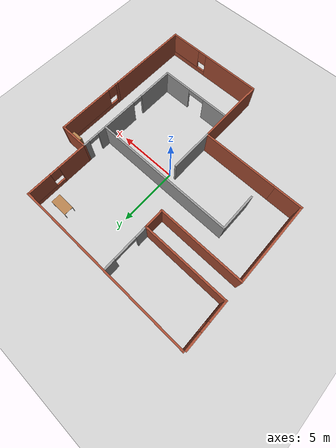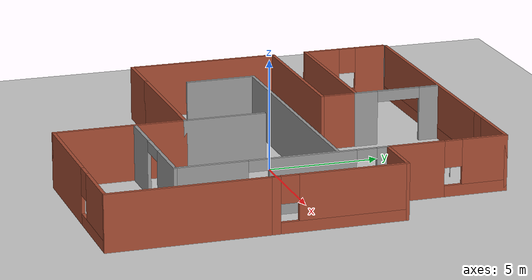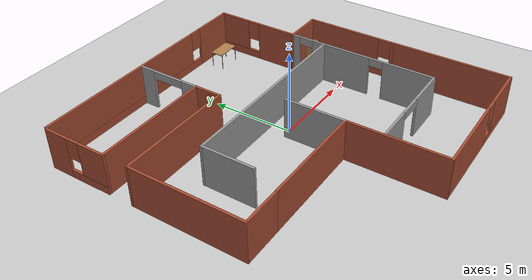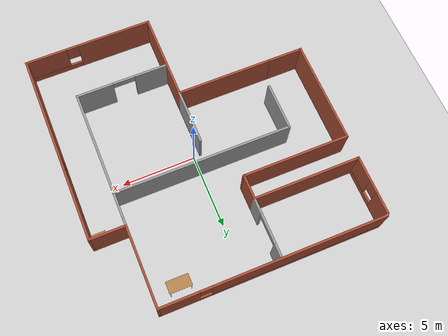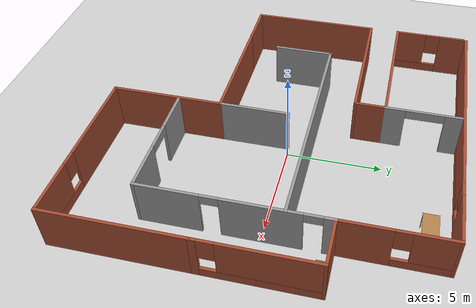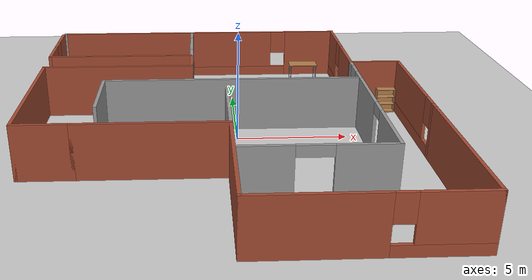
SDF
<sdf version="1.6">
 <world name="default">
  <model name="ground_plane">
   <static>1</static>
   <link name="link">
    <collision name="collision">
     <geometry><plane><normal>0 0 1</normal><size>100 100</size></plane></geometry>
     <surface><friction><ode><mu>100</mu><mu2>50</mu2></ode></friction></surface>
    </collision>
    <visual name="visual">
     <cast_shadows>0</cast_shadows>
     <geometry><plane><normal>0 0 1</normal><size>100 100</size></plane></geometry>
     <material>
      <script><uri>file://media/materials/scripts/gazebo.material</uri><name>Gazebo/Grey</name></script>
     </material>
    </visual>
   </link>
  </model>
  <model name="building">
   <pose>-0.534457 -0.392222 0 0 -0 0</pose>
   <link name="Wall_0">
    <pose>-8.65 7.075 0 0 -0 -1.5708</pose>
    <visual name="Wall_0_Visual_0">
     <pose>-1.27139 0 1.25 0 -0 0</pose>
     <geometry><box><size>1.45721 0.15 2.5</size></box></geometry>
     <material>
      <script><uri>file://media/materials/scripts/gazebo.material</uri><name>Gazebo/Bricks</name></script>
      <ambient>1 1 1 1</ambient>
     </material>
     <meta><layer>0</layer></meta>
    </visual>
    <collision name="Wall_0_Collision_0">
     <geometry><box><size>1.45721 0.15 2.5</size></box></geometry>
     <pose>-1.27139 0 1.25 0 -0 0</pose>
    </collision>
    <visual name="Wall_0_Visual_1">
     <pose>0.728607 0 0.25 0 -0 0</pose>
     <geometry><box><size>2.54279 0.15 0.5</size></box></geometry>
     <material>
      <script><uri>file://media/materials/scripts/gazebo.material</uri><name>Gazebo/Bricks</name></script>
      <ambient>1 1 1 1</ambient>
     </material>
     <meta><layer>0</layer></meta>
    </visual>
    <collision name="Wall_0_Collision_1">
     <geometry><box><size>2.54279 0.15 0.5</size></box></geometry>
     <pose>0.728607 0 0.25 0 -0 0</pose>
    </collision>
    <visual name="Wall_0_Visual_2">
     <pose>1.12861 0 1.5 0 -0 0</pose>
     <geometry><box><size>1.74279 0.15 2</size></box></geometry>
     <material>
      <script><uri>file://media/materials/scripts/gazebo.material</uri><name>Gazebo/Bricks</name></script>
      <ambient>1 1 1 1</ambient>
     </material>
     <meta><layer>0</layer></meta>
    </visual>
    <collision name="Wall_0_Collision_2">
     <geometry><box><size>1.74279 0.15 2</size></box></geometry>
     <pose>1.12861 0 1.5 0 -0 0</pose>
    </collision>
    <visual name="Wall_0_Visual_3">
     <pose>-0.142786 0 1.9 0 -0 0</pose>
     <geometry><box><size>0.8 0.15 1.2</size></box></geometry>
     <material>
      <script><uri>file://media/materials/scripts/gazebo.material</uri><name>Gazebo/Bricks</name></script>
      <ambient>1 1 1 1</ambient>
     </material>
     <meta><layer>0</layer></meta>
    </visual>
    <collision name="Wall_0_Collision_3">
     <geometry><box><size>0.8 0.15 1.2</size></box></geometry>
     <pose>-0.142786 0 1.9 0 -0 0</pose>
    </collision>
   </link>
   <link name="Wall_1">
    <collision name="Wall_1_Collision">
     <geometry><box><size>7.25 0.15 2.5</size></box></geometry>
     <pose>0 0 1.25 0 -0 0</pose>
    </collision>
    <visual name="Wall_1_Visual">
     <pose>0 0 1.25 0 -0 0</pose>
     <geometry><box><size>7.25 0.15 2.5</size></box></geometry>
     <material>
      <script><uri>file://media/materials/scripts/gazebo.material</uri><name>Gazebo/Bricks</name></script>
      <ambient>1 1 1 1</ambient>
     </material>
     <meta><layer>0</layer></meta>
    </visual>
    <pose>-5.1 5.15 0 0 -0 0</pose>
   </link>
   <link name="Wall_10">
    <pose>8.65 0.875 0 0 -0 1.5708</pose>
    <visual name="Wall_10_Visual_0">
     <pose>-2.81124 0 1.25 0 -0 0</pose>
     <geometry><box><size>0.377523 0.15 2.5</size></box></geometry>
     <material>
      <script><uri>file://media/materials/scripts/gazebo.material</uri><name>Gazebo/Bricks</name></script>
      <ambient>1 1 1 1</ambient>
     </material>
     <meta><layer>0</layer></meta>
    </visual>
    <collision name="Wall_10_Collision_0">
     <geometry><box><size>0.377523 0.15 2.5</size></box></geometry>
     <pose>-2.81124 0 1.25 0 -0 0</pose>
    </collision>
    <visual name="Wall_10_Visual_1">
     <pose>0.188761 0 0.25 0 -0 0</pose>
     <geometry><box><size>5.62248 0.15 0.5</size></box></geometry>
     <material>
      <script><uri>file://media/materials/scripts/gazebo.material</uri><name>Gazebo/Bricks</name></script>
      <ambient>1 1 1 1</ambient>
     </material>
     <meta><layer>0</layer></meta>
    </visual>
    <collision name="Wall_10_Collision_1">
     <geometry><box><size>5.62248 0.15 0.5</size></box></geometry>
     <pose>0.188761 0 0.25 0 -0 0</pose>
    </collision>
    <visual name="Wall_10_Visual_2">
     <pose>0.588761 0 1.5 0 -0 0</pose>
     <geometry><box><size>4.82248 0.15 2</size></box></geometry>
     <material>
      <script><uri>file://media/materials/scripts/gazebo.material</uri><name>Gazebo/Bricks</name></script>
      <ambient>1 1 1 1</ambient>
     </material>
     <meta><layer>0</layer></meta>
    </visual>
    <collision name="Wall_10_Collision_2">
     <geometry><box><size>4.82248 0.15 2</size></box></geometry>
     <pose>0.588761 0 1.5 0 -0 0</pose>
    </collision>
    <visual name="Wall_10_Visual_3">
     <pose>-2.22248 0 1.9 0 -0 0</pose>
     <geometry><box><size>0.8 0.15 1.2</size></box></geometry>
     <material>
      <script><uri>file://media/materials/scripts/gazebo.material</uri><name>Gazebo/Bricks</name></script>
      <ambient>1 1 1 1</ambient>
     </material>
     <meta><layer>0</layer></meta>
    </visual>
    <collision name="Wall_10_Collision_3">
     <geometry><box><size>0.8 0.15 1.2</size></box></geometry>
     <pose>-2.22248 0 1.9 0 -0 0</pose>
    </collision>
   </link>
   <link name="Wall_11">
    <collision name="Wall_11_Collision">
     <geometry><box><size>2.5 0.15 2.5</size></box></geometry>
     <pose>0 0 1.25 0 -0 0</pose>
    </collision>
    <visual name="Wall_11_Visual">
     <pose>0 0 1.25 0 -0 0</pose>
     <geometry><box><size>2.5 0.15 2.5</size></box></geometry>
     <material>
      <script><uri>file://media/materials/scripts/gazebo.material</uri><name>Gazebo/Bricks</name></script>
      <ambient>1 1 1 1</ambient>
     </material>
     <meta><layer>0</layer></meta>
    </visual>
    <pose>7.475 3.8 0 0 -0 3.14159</pose>
   </link>
   <link name="Wall_12">
    <pose>6.3 6.475 0 0 -0 1.5708</pose>
    <visual name="Wall_12_Visual_0">
     <pose>-1.44301 0 1.25 0 -0 0</pose>
     <geometry><box><size>2.61398 0.15 2.5</size></box></geometry>
     <material>
      <script><uri>file://media/materials/scripts/gazebo.material</uri><name>Gazebo/Bricks</name></script>
      <ambient>1 1 1 1</ambient>
     </material>
     <meta><layer>0</layer></meta>
    </visual>
    <collision name="Wall_12_Collision_0">
     <geometry><box><size>2.61398 0.15 2.5</size></box></geometry>
     <pose>-1.44301 0 1.25 0 -0 0</pose>
    </collision>
    <visual name="Wall_12_Visual_1">
     <pose>1.30699 0 0.25 0 -0 0</pose>
     <geometry><box><size>2.88602 0.15 0.5</size></box></geometry>
     <material>
      <script><uri>file://media/materials/scripts/gazebo.material</uri><name>Gazebo/Bricks</name></script>
      <ambient>1 1 1 1</ambient>
     </material>
     <meta><layer>0</layer></meta>
    </visual>
    <collision name="Wall_12_Collision_1">
     <geometry><box><size>2.88602 0.15 0.5</size></box></geometry>
     <pose>1.30699 0 0.25 0 -0 0</pose>
    </collision>
    <visual name="Wall_12_Visual_2">
     <pose>1.70699 0 1.5 0 -0 0</pose>
     <geometry><box><size>2.08602 0.15 2</size></box></geometry>
     <material>
      <script><uri>file://media/materials/scripts/gazebo.material</uri><name>Gazebo/Bricks</name></script>
      <ambient>1 1 1 1</ambient>
     </material>
     <meta><layer>0</layer></meta>
    </visual>
    <collision name="Wall_12_Collision_2">
     <geometry><box><size>2.08602 0.15 2</size></box></geometry>
     <pose>1.70699 0 1.5 0 -0 0</pose>
    </collision>
    <visual name="Wall_12_Visual_3">
     <pose>0.263984 0 1.9 0 -0 0</pose>
     <geometry><box><size>0.8 0.15 1.2</size></box></geometry>
     <material>
      <script><uri>file://media/materials/scripts/gazebo.material</uri><name>Gazebo/Bricks</name></script>
      <ambient>1 1 1 1</ambient>
     </material>
     <meta><layer>0</layer></meta>
    </visual>
    <collision name="Wall_12_Collision_3">
     <geometry><box><size>0.8 0.15 1.2</size></box></geometry>
     <pose>0.263984 0 1.9 0 -0 0</pose>
    </collision>
   </link>
   <link name="Wall_13">
    <pose>-1.125 9.15 0 0 -0 3.14159</pose>
    <visual name="Wall_13_Visual_0">
     <pose>-6.14594 0 1.25 0 -0 0</pose>
     <geometry><box><size>2.70811 0.15 2.5</size></box></geometry>
     <material>
      <script><uri>file://media/materials/scripts/gazebo.material</uri><name>Gazebo/Bricks</name></script>
      <ambient>1 1 1 1</ambient>
     </material>
     <meta><layer>0</layer></meta>
    </visual>
    <collision name="Wall_13_Collision_0">
     <geometry><box><size>2.70811 0.15 2.5</size></box></geometry>
     <pose>-6.14594 0 1.25 0 -0 0</pose>
    </collision>
    <visual name="Wall_13_Visual_1">
     <pose>1.35406 0 0.25 0 -0 0</pose>
     <geometry><box><size>12.2919 0.15 0.5</size></box></geometry>
     <material>
      <script><uri>file://media/materials/scripts/gazebo.material</uri><name>Gazebo/Bricks</name></script>
      <ambient>1 1 1 1</ambient>
     </material>
     <meta><layer>0</layer></meta>
    </visual>
    <collision name="Wall_13_Collision_1">
     <geometry><box><size>12.2919 0.15 0.5</size></box></geometry>
     <pose>1.35406 0 0.25 0 -0 0</pose>
    </collision>
    <visual name="Wall_13_Visual_2">
     <pose>1.75406 0 1.5 0 -0 0</pose>
     <geometry><box><size>11.4919 0.15 2</size></box></geometry>
     <material>
      <script><uri>file://media/materials/scripts/gazebo.material</uri><name>Gazebo/Bricks</name></script>
      <ambient>1 1 1 1</ambient>
     </material>
     <meta><layer>0</layer></meta>
    </visual>
    <collision name="Wall_13_Collision_2">
     <geometry><box><size>11.4919 0.15 2</size></box></geometry>
     <pose>1.75406 0 1.5 0 -0 0</pose>
    </collision>
    <visual name="Wall_13_Visual_3">
     <pose>-4.39189 0 1.9 0 -0 0</pose>
     <geometry><box><size>0.8 0.15 1.2</size></box></geometry>
     <material>
      <script><uri>file://media/materials/scripts/gazebo.material</uri><name>Gazebo/Bricks</name></script>
      <ambient>1 1 1 1</ambient>
     </material>
     <meta><layer>0</layer></meta>
    </visual>
    <collision name="Wall_13_Collision_3">
     <geometry><box><size>0.8 0.15 1.2</size></box></geometry>
     <pose>-4.39189 0 1.9 0 -0 0</pose>
    </collision>
   </link>
   <link name="Wall_14">
    <collision name="Wall_14_Collision">
     <geometry><box><size>0.15 0.15 2.5</size></box></geometry>
     <pose>0 0 1.25 0 -0 0</pose>
    </collision>
    <visual name="Wall_14_Visual">
     <pose>0 0 1.25 0 -0 0</pose>
     <geometry><box><size>0.15 0.15 2.5</size></box></geometry>
     <material>
      <script><uri>file://media/materials/scripts/gazebo.material</uri><name>Gazebo/Grey</name></script>
      <ambient>1 1 1 1</ambient>
     </material>
     <meta><layer>0</layer></meta>
    </visual>
    <pose>-8.55 9.15 0 0 -0 0</pose>
   </link>
   <link name="Wall_18">
    <pose>6.3 -0.875 0 0 -0 -1.5708</pose>
    <visual name="Wall_18_Visual_0">
     <pose>-4.45188 0 1.25 0 -0 0</pose>
     <geometry><box><size>0.596246 0.15 2.5</size></box></geometry>
     <material>
      <script><uri>file://media/materials/scripts/gazebo.material</uri><name>Gazebo/Grey</name></script>
      <ambient>1 1 1 1</ambient>
     </material>
     <meta><layer>0</layer></meta>
    </visual>
    <collision name="Wall_18_Collision_0">
     <geometry><box><size>0.596246 0.15 2.5</size></box></geometry>
     <pose>-4.45188 0 1.25 0 -0 0</pose>
    </collision>
    <visual name="Wall_18_Visual_1">
     <pose>-1.32304 0 1.25 0 -0 0</pose>
     <geometry><box><size>3.86144 0.15 2.5</size></box></geometry>
     <material>
      <script><uri>file://media/materials/scripts/gazebo.material</uri><name>Gazebo/Grey</name></script>
      <ambient>1 1 1 1</ambient>
     </material>
     <meta><layer>0</layer></meta>
    </visual>
    <collision name="Wall_18_Collision_1">
     <geometry><box><size>3.86144 0.15 2.5</size></box></geometry>
     <pose>-1.32304 0 1.25 0 -0 0</pose>
    </collision>
    <visual name="Wall_18_Visual_2">
     <pose>3.12884 0 1.25 0 -0 0</pose>
     <geometry><box><size>3.24232 0.15 2.5</size></box></geometry>
     <material>
      <script><uri>file://media/materials/scripts/gazebo.material</uri><name>Gazebo/Grey</name></script>
      <ambient>1 1 1 1</ambient>
     </material>
     <meta><layer>0</layer></meta>
    </visual>
    <collision name="Wall_18_Collision_2">
     <geometry><box><size>3.24232 0.15 2.5</size></box></geometry>
     <pose>3.12884 0 1.25 0 -0 0</pose>
    </collision>
    <visual name="Wall_18_Visual_3">
     <pose>-3.70375 0 2.25 0 -0 0</pose>
     <geometry><box><size>0.9 0.15 0.5</size></box></geometry>
     <material>
      <script><uri>file://media/materials/scripts/gazebo.material</uri><name>Gazebo/Grey</name></script>
      <ambient>1 1 1 1</ambient>
     </material>
     <meta><layer>0</layer></meta>
    </visual>
    <collision name="Wall_18_Collision_3">
     <geometry><box><size>0.9 0.15 0.5</size></box></geometry>
     <pose>-3.70375 0 2.25 0 -0 0</pose>
    </collision>
    <visual name="Wall_18_Visual_4">
     <pose>1.05768 0 2.25 0 -0 0</pose>
     <geometry><box><size>0.9 0.15 0.5</size></box></geometry>
     <material>
      <script><uri>file://media/materials/scripts/gazebo.material</uri><name>Gazebo/Grey</name></script>
      <ambient>1 1 1 1</ambient>
     </material>
     <meta><layer>0</layer></meta>
    </visual>
    <collision name="Wall_18_Collision_4">
     <geometry><box><size>0.9 0.15 0.5</size></box></geometry>
     <pose>1.05768 0 2.25 0 -0 0</pose>
    </collision>
   </link>
   <link name="Wall_19">
    <pose>3.25 -5.55 0 0 -0 3.14159</pose>
    <visual name="Wall_19_Visual_0">
     <pose>-1.85284 0 1.25 0 -0 0</pose>
     <geometry><box><size>2.54431 0.15 2.5</size></box></geometry>
     <material>
      <script><uri>file://media/materials/scripts/gazebo.material</uri><name>Gazebo/Grey</name></script>
      <ambient>1 1 1 1</ambient>
     </material>
     <meta><layer>0</layer></meta>
    </visual>
    <collision name="Wall_19_Collision_0">
     <geometry><box><size>2.54431 0.15 2.5</size></box></geometry>
     <pose>-1.85284 0 1.25 0 -0 0</pose>
    </collision>
    <visual name="Wall_19_Visual_1">
     <pose>2.02216 0 1.25 0 -0 0</pose>
     <geometry><box><size>2.20569 0.15 2.5</size></box></geometry>
     <material>
      <script><uri>file://media/materials/scripts/gazebo.material</uri><name>Gazebo/Grey</name></script>
      <ambient>1 1 1 1</ambient>
     </material>
     <meta><layer>0</layer></meta>
    </visual>
    <collision name="Wall_19_Collision_1">
     <geometry><box><size>2.20569 0.15 2.5</size></box></geometry>
     <pose>2.02216 0 1.25 0 -0 0</pose>
    </collision>
    <visual name="Wall_19_Visual_2">
     <pose>0.169312 0 2.25 0 -0 0</pose>
     <geometry><box><size>1.5 0.15 0.5</size></box></geometry>
     <material>
      <script><uri>file://media/materials/scripts/gazebo.material</uri><name>Gazebo/Grey</name></script>
      <ambient>1 1 1 1</ambient>
     </material>
     <meta><layer>0</layer></meta>
    </visual>
    <collision name="Wall_19_Collision_2">
     <geometry><box><size>1.5 0.15 0.5</size></box></geometry>
     <pose>0.169312 0 2.25 0 -0 0</pose>
    </collision>
   </link>
   <link name="Wall_2">
    <collision name="Wall_2_Collision">
     <geometry><box><size>1.75 0.15 2.5</size></box></geometry>
     <pose>0 0 1.25 0 -0 0</pose>
    </collision>
    <visual name="Wall_2_Visual">
     <pose>0 0 1.25 0 -0 0</pose>
     <geometry><box><size>1.75 0.15 2.5</size></box></geometry>
     <material>
      <script><uri>file://media/materials/scripts/gazebo.material</uri><name>Gazebo/Bricks</name></script>
      <ambient>1 1 1 1</ambient>
     </material>
     <meta><layer>0</layer></meta>
    </visual>
    <pose>-1.55 4.35 0 0 -0 -1.5708</pose>
   </link>
   <link name="Wall_23">
    <pose>-1.55 7.075 0 0 -0 1.5708</pose>
    <visual name="Wall_23_Visual_0">
     <pose>-1.45521 0 1.25 0 -0 0</pose>
     <geometry><box><size>1.08959 0.15 2.5</size></box></geometry>
     <material>
      <script><uri>file://media/materials/scripts/gazebo.material</uri><name>Gazebo/Grey</name></script>
      <ambient>1 1 1 1</ambient>
     </material>
     <meta><layer>0</layer></meta>
    </visual>
    <collision name="Wall_23_Collision_0">
     <geometry><box><size>1.08959 0.15 2.5</size></box></geometry>
     <pose>-1.45521 0 1.25 0 -0 0</pose>
    </collision>
    <visual name="Wall_23_Visual_1">
     <pose>1.54479 0 1.25 0 -0 0</pose>
     <geometry><box><size>0.910414 0.15 2.5</size></box></geometry>
     <material>
      <script><uri>file://media/materials/scripts/gazebo.material</uri><name>Gazebo/Grey</name></script>
      <ambient>1 1 1 1</ambient>
     </material>
     <meta><layer>0</layer></meta>
    </visual>
    <collision name="Wall_23_Collision_1">
     <geometry><box><size>0.910414 0.15 2.5</size></box></geometry>
     <pose>1.54479 0 1.25 0 -0 0</pose>
    </collision>
    <visual name="Wall_23_Visual_2">
     <pose>0.089586 0 2.25 0 -0 0</pose>
     <geometry><box><size>2 0.15 0.5</size></box></geometry>
     <material>
      <script><uri>file://media/materials/scripts/gazebo.material</uri><name>Gazebo/Grey</name></script>
      <ambient>1 1 1 1</ambient>
     </material>
     <meta><layer>0</layer></meta>
    </visual>
    <collision name="Wall_23_Collision_2">
     <geometry><box><size>2 0.15 0.5</size></box></geometry>
     <pose>0.089586 0 2.25 0 -0 0</pose>
    </collision>
   </link>
   <link name="Wall_25">
    <collision name="Wall_25_Collision">
     <geometry><box><size>12 0.15 2.5</size></box></geometry>
     <pose>0 0 1.25 0 -0 0</pose>
    </collision>
    <visual name="Wall_25_Visual">
     <pose>0 0 1.25 0 -0 0</pose>
     <geometry><box><size>12 0.15 2.5</size></box></geometry>
     <material>
      <script><uri>file://media/materials/scripts/gazebo.material</uri><name>Gazebo/Grey</name></script>
      <ambient>1 1 1 1</ambient>
     </material>
     <meta><layer>0</layer></meta>
    </visual>
    <pose>0.374311 1.57855 0 0 -0 3.14159</pose>
   </link>
   <link name="Wall_26">
    <collision name="Wall_26_Collision">
     <geometry><box><size>3.25 0.15 2.5</size></box></geometry>
     <pose>0 0 1.25 0 -0 0</pose>
    </collision>
    <visual name="Wall_26_Visual">
     <pose>0 0 1.25 0 -0 0</pose>
     <geometry><box><size>3.25 0.15 2.5</size></box></geometry>
     <material>
      <script><uri>file://media/materials/scripts/gazebo.material</uri><name>Gazebo/Grey</name></script>
      <ambient>1 1 1 1</ambient>
     </material>
     <meta><layer>0</layer></meta>
    </visual>
    <pose>-5.55069 0.028545 0 0 -0 -1.5708</pose>
   </link>
   <link name="Wall_28">
    <collision name="Wall_28_Collision">
     <geometry><box><size>3.75 0.15 2.5</size></box></geometry>
     <pose>0 0 1.25 0 -0 0</pose>
    </collision>
    <visual name="Wall_28_Visual">
     <pose>0 0 1.25 0 -0 0</pose>
     <geometry><box><size>3.75 0.15 2.5</size></box></geometry>
     <material>
      <script><uri>file://media/materials/scripts/gazebo.material</uri><name>Gazebo/Grey</name></script>
      <ambient>1 1 1 1</ambient>
     </material>
     <meta><layer>0</layer></meta>
    </visual>
    <pose>0.05 -1.5 0 0 -0 1.5708</pose>
   </link>
   <link name="Wall_3">
    <collision name="Wall_3_Collision">
     <geometry><box><size>7.25 0.15 2.5</size></box></geometry>
     <pose>0 0 1.25 0 -0 0</pose>
    </collision>
    <visual name="Wall_3_Visual">
     <pose>0 0 1.25 0 -0 0</pose>
     <geometry><box><size>7.25 0.15 2.5</size></box></geometry>
     <material>
      <script><uri>file://media/materials/scripts/gazebo.material</uri><name>Gazebo/Bricks</name></script>
      <ambient>1 1 1 1</ambient>
     </material>
     <meta><layer>0</layer></meta>
    </visual>
    <pose>-5.1 3.55 0 0 -0 3.14159</pose>
   </link>
   <link name="Wall_4">
    <collision name="Wall_4_Collision">
     <geometry><box><size>7 0.15 2.5</size></box></geometry>
     <pose>0 0 1.25 0 -0 0</pose>
    </collision>
    <visual name="Wall_4_Visual">
     <pose>0 0 1.25 0 -0 0</pose>
     <geometry><box><size>7 0.15 2.5</size></box></geometry>
     <material>
      <script><uri>file://media/materials/scripts/gazebo.material</uri><name>Gazebo/Bricks</name></script>
      <ambient>1 1 1 1</ambient>
     </material>
     <meta><layer>0</layer></meta>
    </visual>
    <pose>-8.65 0.125 0 0 -0 -1.5708</pose>
   </link>
   <link name="Wall_5">
    <collision name="Wall_5_Collision">
     <geometry><box><size>2.5 0.15 2.5</size></box></geometry>
     <pose>0 0 1.25 0 -0 0</pose>
    </collision>
    <visual name="Wall_5_Visual">
     <pose>0 0 1.25 0 -0 0</pose>
     <geometry><box><size>2.5 0.15 2.5</size></box></geometry>
     <material>
      <script><uri>file://media/materials/scripts/gazebo.material</uri><name>Gazebo/Bricks</name></script>
      <ambient>1 1 1 1</ambient>
     </material>
     <meta><layer>0</layer></meta>
    </visual>
    <pose>-7.475 -3.3 0 0 -0 0</pose>
   </link>
   <link name="Wall_6">
    <collision name="Wall_6_Collision">
     <geometry><box><size>6.5 0.15 2.5</size></box></geometry>
     <pose>0 0 1.25 0 -0 0</pose>
    </collision>
    <visual name="Wall_6_Visual">
     <pose>0 0 1.25 0 -0 0</pose>
     <geometry><box><size>6.5 0.15 2.5</size></box></geometry>
     <material>
      <script><uri>file://media/materials/scripts/gazebo.material</uri><name>Gazebo/Bricks</name></script>
      <ambient>1 1 1 1</ambient>
     </material>
     <meta><layer>0</layer></meta>
    </visual>
    <pose>-3.125 -3.3 0 0 -0 0</pose>
   </link>
   <link name="Wall_7">
    <collision name="Wall_7_Collision">
     <geometry><box><size>6 0.15 2.5</size></box></geometry>
     <pose>0 0 1.25 0 -0 0</pose>
    </collision>
    <visual name="Wall_7_Visual">
     <pose>0 0 1.25 0 -0 0</pose>
     <geometry><box><size>6 0.15 2.5</size></box></geometry>
     <material>
      <script><uri>file://media/materials/scripts/gazebo.material</uri><name>Gazebo/Bricks</name></script>
      <ambient>1 1 1 1</ambient>
     </material>
     <meta><layer>0</layer></meta>
    </visual>
    <pose>0.05 -6.225 0 0 -0 -1.5708</pose>
   </link>
   <link name="Wall_8">
    <pose>4.35 -9.15 0 0 -0 0</pose>
    <visual name="Wall_8_Visual_0">
     <pose>-1.82515 0 1.25 0 -0 0</pose>
     <geometry><box><size>5.09971 0.15 2.5</size></box></geometry>
     <material>
      <script><uri>file://media/materials/scripts/gazebo.material</uri><name>Gazebo/Bricks</name></script>
      <ambient>1 1 1 1</ambient>
     </material>
     <meta><layer>0</layer></meta>
    </visual>
    <collision name="Wall_8_Collision_0">
     <geometry><box><size>5.09971 0.15 2.5</size></box></geometry>
     <pose>-1.82515 0 1.25 0 -0 0</pose>
    </collision>
    <visual name="Wall_8_Visual_1">
     <pose>2.54985 0 0.25 0 -0 0</pose>
     <geometry><box><size>3.65029 0.15 0.5</size></box></geometry>
     <material>
      <script><uri>file://media/materials/scripts/gazebo.material</uri><name>Gazebo/Bricks</name></script>
      <ambient>1 1 1 1</ambient>
     </material>
     <meta><layer>0</layer></meta>
    </visual>
    <collision name="Wall_8_Collision_1">
     <geometry><box><size>3.65029 0.15 0.5</size></box></geometry>
     <pose>2.54985 0 0.25 0 -0 0</pose>
    </collision>
    <visual name="Wall_8_Visual_2">
     <pose>2.94985 0 1.5 0 -0 0</pose>
     <geometry><box><size>2.8503 0.15 2</size></box></geometry>
     <material>
      <script><uri>file://media/materials/scripts/gazebo.material</uri><name>Gazebo/Bricks</name></script>
      <ambient>1 1 1 1</ambient>
     </material>
     <meta><layer>0</layer></meta>
    </visual>
    <collision name="Wall_8_Collision_2">
     <geometry><box><size>2.8503 0.15 2</size></box></geometry>
     <pose>2.94985 0 1.5 0 -0 0</pose>
    </collision>
    <visual name="Wall_8_Visual_3">
     <pose>1.12471 0 1.9 0 -0 0</pose>
     <geometry><box><size>0.8 0.15 1.2</size></box></geometry>
     <material>
      <script><uri>file://media/materials/scripts/gazebo.material</uri><name>Gazebo/Bricks</name></script>
      <ambient>1 1 1 1</ambient>
     </material>
     <meta><layer>0</layer></meta>
    </visual>
    <collision name="Wall_8_Collision_3">
     <geometry><box><size>0.8 0.15 1.2</size></box></geometry>
     <pose>1.12471 0 1.9 0 -0 0</pose>
    </collision>
   </link>
   <link name="Wall_9">
    <collision name="Wall_9_Collision">
     <geometry><box><size>7.25 0.15 2.5</size></box></geometry>
     <pose>0 0 1.25 0 -0 0</pose>
    </collision>
    <visual name="Wall_9_Visual">
     <pose>0 0 1.25 0 -0 0</pose>
     <geometry><box><size>7.25 0.15 2.5</size></box></geometry>
     <material>
      <script><uri>file://media/materials/scripts/gazebo.material</uri><name>Gazebo/Bricks</name></script>
      <ambient>1 1 1 1</ambient>
     </material>
     <meta><layer>0</layer></meta>
    </visual>
    <pose>8.65 -5.6 0 0 -0 1.5708</pose>
   </link>
   <static>1</static>
  </model>
  <model name="table_0">
   <static>1</static>
   <link name="link">
    <collision name="surface">
     <pose>0 0 1 0 -0 0</pose>
     <geometry><box><size>1.5 0.8 0.03</size></box></geometry>
     <surface><friction><ode><mu>0.6</mu><mu2>0.6</mu2></ode></friction></surface>
    </collision>
    <visual name="visual1">
     <pose>0 0 1 0 -0 0</pose>
     <geometry><box><size>1.5 0.8 0.03</size></box></geometry>
     <material>
      <script><uri>file://media/materials/scripts/gazebo.material</uri><name>Gazebo/Wood</name></script>
     </material>
    </visual>
    <collision name="front_left_leg">
     <pose>0.68 0.38 0.5 0 -0 0</pose>
     <geometry><cylinder><radius>0.02</radius><length>1</length></cylinder></geometry>
    </collision>
    <visual name="front_left_leg">
     <pose>0.68 0.38 0.5 0 -0 0</pose>
     <geometry><cylinder><radius>0.02</radius><length>1</length></cylinder></geometry>
     <material>
      <script><uri>file://media/materials/scripts/gazebo.material</uri><name>Gazebo/Grey</name></script>
     </material>
    </visual>
    <collision name="front_right_leg">
     <pose>0.68 -0.38 0.5 0 -0 0</pose>
     <geometry><cylinder><radius>0.02</radius><length>1</length></cylinder></geometry>
    </collision>
    <visual name="front_right_leg">
     <pose>0.68 -0.38 0.5 0 -0 0</pose>
     <geometry><cylinder><radius>0.02</radius><length>1</length></cylinder></geometry>
     <material>
      <script><uri>file://media/materials/scripts/gazebo.material</uri><name>Gazebo/Grey</name></script>
     </material>
    </visual>
    <collision name="back_right_leg">
     <pose>-0.68 -0.38 0.5 0 -0 0</pose>
     <geometry><cylinder><radius>0.02</radius><length>1</length></cylinder></geometry>
    </collision>
    <visual name="back_right_leg">
     <pose>-0.68 -0.38 0.5 0 -0 0</pose>
     <geometry><cylinder><radius>0.02</radius><length>1</length></cylinder></geometry>
     <material>
      <script><uri>file://media/materials/scripts/gazebo.material</uri><name>Gazebo/Grey</name></script>
     </material>
    </visual>
    <collision name="back_left_leg">
     <pose>-0.68 0.38 0.5 0 -0 0</pose>
     <geometry><cylinder><radius>0.02</radius><length>1</length></cylinder></geometry>
    </collision>
    <visual name="back_left_leg">
     <pose>-0.68 0.38 0.5 0 -0 0</pose>
     <geometry><cylinder><radius>0.02</radius><length>1</length></cylinder></geometry>
     <material>
      <script><uri>file://media/materials/scripts/gazebo.material</uri><name>Gazebo/Grey</name></script>
     </material>
    </visual>
   </link>
   <pose>4.02761 7.57416 0 0 -0 0</pose>
  </model>
  <model name="bookshelf_0">
   <static>1</static>
   <link name="link">
    <inertial><mass>1</mass></inertial>
    <collision name="back">
     <pose>0 0.005 0.6 0 -0 0</pose>
     <geometry><box><size>0.9 0.01 1.2</size></box></geometry>
    </collision>
    <visual name="visual1">
     <pose>0 0.005 0.6 0 -0 0</pose>
     <geometry><box><size>0.9 0.01 1.2</size></box></geometry>
     <material>
      <script><uri>file://media/materials/scripts/gazebo.material</uri><name>Gazebo/Wood</name></script>
     </material>
    </visual>
    <collision name="left_side">
     <pose>0.45 -0.195 0.6 0 -0 0</pose>
     <geometry><box><size>0.02 0.4 1.2</size></box></geometry>
    </collision>
    <visual name="visual2">
     <pose>0.45 -0.195 0.6 0 -0 0</pose>
     <geometry><box><size>0.02 0.4 1.2</size></box></geometry>
     <material>
      <script><uri>file://media/materials/scripts/gazebo.material</uri><name>Gazebo/Wood</name></script>
     </material>
    </visual>
    <collision name="right_side">
     <pose>-0.45 -0.195 0.6 0 -0 0</pose>
     <geometry><box><size>0.02 0.4 1.2</size></box></geometry>
    </collision>
    <visual name="visual3">
     <pose>-0.45 -0.195 0.6 0 -0 0</pose>
     <geometry><box><size>0.02 0.4 1.2</size></box></geometry>
     <material>
      <script><uri>file://media/materials/scripts/gazebo.material</uri><name>Gazebo/Wood</name></script>
     </material>
    </visual>
    <collision name="bottom">
     <pose>0 -0.195 0.03 0 -0 0</pose>
     <geometry><box><size>0.88 0.4 0.06</size></box></geometry>
    </collision>
    <visual name="visual4">
     <pose>0 -0.195 0.03 0 -0 0</pose>
     <geometry><box><size>0.88 0.4 0.06</size></box></geometry>
     <material>
      <script><uri>file://media/materials/scripts/gazebo.material</uri><name>Gazebo/Wood</name></script>
     </material>
    </visual>
    <collision name="top">
     <pose>0 -0.195 1.19 0 -0 0</pose>
     <geometry><box><size>0.88 0.4 0.02</size></box></geometry>
    </collision>
    <visual name="visual5">
     <pose>0 -0.195 1.19 0 -0 0</pose>
     <geometry><box><size>0.88 0.4 0.02</size></box></geometry>
     <material>
      <script><uri>file://media/materials/scripts/gazebo.material</uri><name>Gazebo/Wood</name></script>
     </material>
    </visual>
    <collision name="low_shelf">
     <pose>0 -0.195 0.43 0 -0 0</pose>
     <geometry><box><size>0.88 0.4 0.02</size></box></geometry>
    </collision>
    <visual name="visual6">
     <pose>0 -0.195 0.43 0 -0 0</pose>
     <geometry><box><size>0.88 0.4 0.02</size></box></geometry>
     <material>
      <script><uri>file://media/materials/scripts/gazebo.material</uri><name>Gazebo/Wood</name></script>
     </material>
    </visual>
    <collision name="high_shelf">
     <pose>0 -0.195 0.8 0 -0 0</pose>
     <geometry><box><size>0.88 0.4 0.02</size></box></geometry>
    </collision>
    <visual name="visual7">
     <pose>0 -0.195 0.8 0 -0 0</pose>
     <geometry><box><size>0.88 0.4 0.02</size></box></geometry>
     <material>
      <script><uri>file://media/materials/scripts/gazebo.material</uri><name>Gazebo/Wood</name></script>
     </material>
    </visual>
   </link>
   <pose>7.53038 3.21102 0 0 -0 0</pose>
  </model>
 </world>
</sdf>
